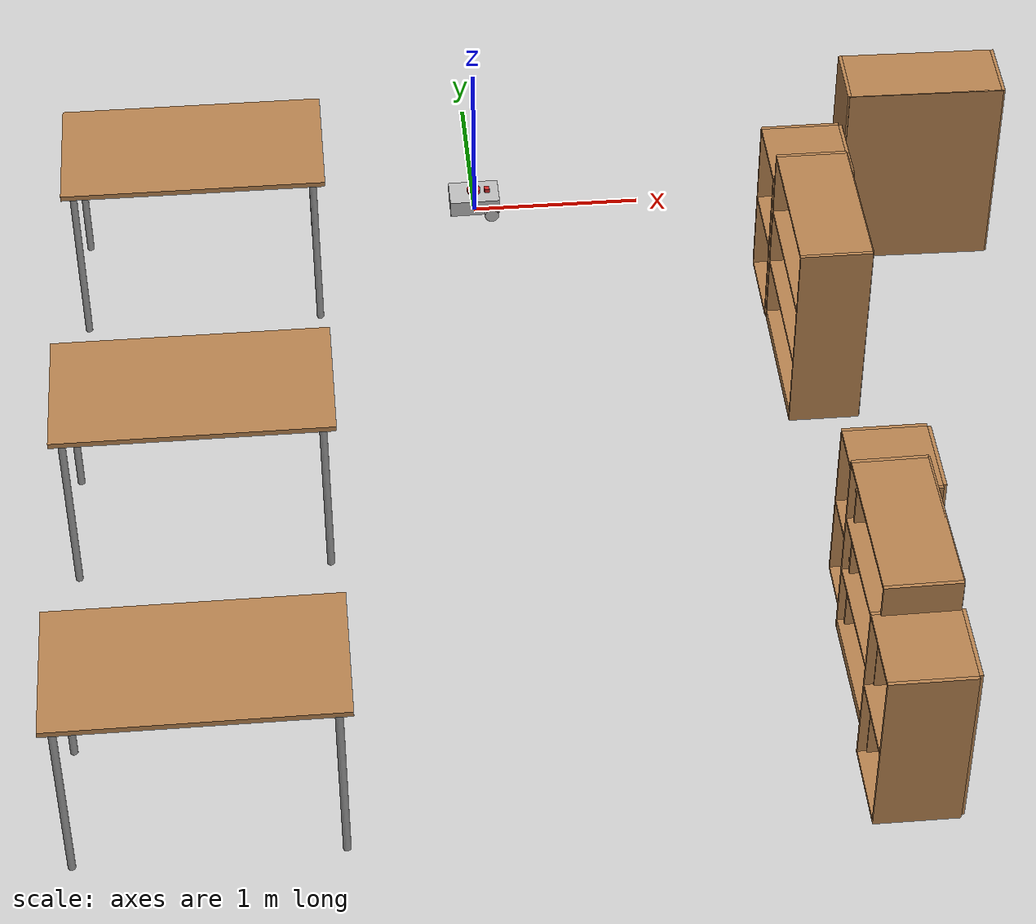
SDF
<sdf version="1.7">
 <world name="default">
  <model name="ground_plane">
   <static>1</static>
   <link name="link">
    <collision name="collision">
     <geometry><plane><normal>0 0 1</normal><size>100 100</size></plane></geometry>
     <surface><friction><ode><mu>100</mu><mu2>50</mu2></ode></friction></surface>
    </collision>
    <visual name="visual">
     <cast_shadows>0</cast_shadows>
     <geometry><plane><normal>0 0 1</normal><size>100 100</size></plane></geometry>
     <material>
      <script><uri>file://media/materials/scripts/gazebo.material</uri><name>Gazebo/Grey</name></script>
     </material>
    </visual>
   </link>
  </model>
  <model name="cabinet">
   <static>1</static>
   <link name="cabinet_bottom_plate">
    <inertial>
     <pose>0 0 -1 0 -0 0</pose>
     <inertia><ixx>2.05</ixx><ixy>0</ixy><ixz>0</ixz><iyy>2.05</iyy><iyz>0</iyz><izz>2.05</izz></inertia>
     <mass>25</mass>
    </inertial>
    <collision name="cabinet_bottom_plate_geom">
     <pose>0 0 0.01 0 -0 0</pose>
     <geometry><box><size>0.45 0.45 0.02</size></box></geometry>
    </collision>
    <visual name="cabinet_bottom_plate_geom_visual">
     <pose>0 0 0.01 0 -0 0</pose>
     <geometry><box><size>0.45 0.45 0.02</size></box></geometry>
     <material>
      <script><uri>file://media/materials/scripts/gazebo.material</uri><name>Gazebo/Wood</name></script>
     </material>
    </visual>
    <collision name="cabinet_bottom_plate_geom_cabinet_back_plate">
     <pose>0.235 0 0.51 0 -0 0</pose>
     <geometry><box><size>0.02 0.45 1.02</size></box></geometry>
    </collision>
    <visual name="cabinet_bottom_plate_geom_cabinet_back_plate_visual">
     <pose>0.235 0 0.51 0 -0 0</pose>
     <geometry><box><size>0.02 0.45 1.02</size></box></geometry>
     <material>
      <script><uri>file://media/materials/scripts/gazebo.material</uri><name>Gazebo/Wood</name></script>
     </material>
    </visual>
    <collision name="cabinet_bottom_plate_geom_cabinet_left_plate">
     <pose>0 0.235 0.51 0 -0 0</pose>
     <geometry><box><size>0.45 0.02 1.02</size></box></geometry>
    </collision>
    <visual name="cabinet_bottom_plate_geom_cabinet_left_plate_visual">
     <pose>0 0.235 0.51 0 -0 0</pose>
     <geometry><box><size>0.45 0.02 1.02</size></box></geometry>
     <material>
      <script><uri>file://media/materials/scripts/gazebo.material</uri><name>Gazebo/Wood</name></script>
     </material>
    </visual>
    <collision name="cabinet_bottom_plate_geom_cabinet_middle_plate">
     <pose>0 0 0.51 0 -0 0</pose>
     <geometry><box><size>0.45 0.45 0.02</size></box></geometry>
    </collision>
    <visual name="cabinet_bottom_plate_geom_cabinet_middle_plate_visual">
     <pose>0 0 0.51 0 -0 0</pose>
     <geometry><box><size>0.45 0.45 0.02</size></box></geometry>
     <material>
      <script><uri>file://media/materials/scripts/gazebo.material</uri><name>Gazebo/Wood</name></script>
     </material>
    </visual>
    <collision name="cabinet_bottom_plate_geom_cabinet_right_plate">
     <pose>0 -0.235 0.51 0 -0 0</pose>
     <geometry><box><size>0.45 0.02 1.02</size></box></geometry>
    </collision>
    <visual name="cabinet_bottom_plate_geom_cabinet_right_plate_visual">
     <pose>0 -0.235 0.51 0 -0 0</pose>
     <geometry><box><size>0.45 0.02 1.02</size></box></geometry>
     <material>
      <script><uri>file://media/materials/scripts/gazebo.material</uri><name>Gazebo/Wood</name></script>
     </material>
    </visual>
    <collision name="cabinet_bottom_plate_geom_cabinet_top_plate">
     <pose>0 0 1.01 0 -0 0</pose>
     <geometry><box><size>0.45 0.45 0.02</size></box></geometry>
    </collision>
    <visual name="cabinet_bottom_plate_geom_cabinet_top_plate_visual">
     <pose>0 0 1.01 0 -0 0</pose>
     <geometry><box><size>0.45 0.45 0.02</size></box></geometry>
     <material>
      <script><uri>file://media/materials/scripts/gazebo.material</uri><name>Gazebo/Wood</name></script>
     </material>
    </visual>
   </link>
   <pose>1.85545 -0.907747 0 0 -0 0</pose>
  </model>
  <model name="table">
   <static>1</static>
   <link name="link">
    <collision name="surface">
     <pose>0 0 1 0 -0 0</pose>
     <geometry><box><size>1.5 0.8 0.03</size></box></geometry>
     <surface><friction><ode><mu>0.6</mu><mu2>0.6</mu2></ode></friction></surface>
    </collision>
    <visual name="visual1">
     <pose>0 0 1 0 -0 0</pose>
     <geometry><box><size>1.5 0.8 0.03</size></box></geometry>
     <material>
      <script><uri>file://media/materials/scripts/gazebo.material</uri><name>Gazebo/Wood</name></script>
     </material>
    </visual>
    <collision name="front_left_leg">
     <pose>0.68 0.38 0.5 0 -0 0</pose>
     <geometry><cylinder><radius>0.02</radius><length>1</length></cylinder></geometry>
    </collision>
    <visual name="front_left_leg">
     <pose>0.68 0.38 0.5 0 -0 0</pose>
     <geometry><cylinder><radius>0.02</radius><length>1</length></cylinder></geometry>
     <material>
      <script><uri>file://media/materials/scripts/gazebo.material</uri><name>Gazebo/Grey</name></script>
     </material>
    </visual>
    <collision name="front_right_leg">
     <pose>0.68 -0.38 0.5 0 -0 0</pose>
     <geometry><cylinder><radius>0.02</radius><length>1</length></cylinder></geometry>
    </collision>
    <visual name="front_right_leg">
     <pose>0.68 -0.38 0.5 0 -0 0</pose>
     <geometry><cylinder><radius>0.02</radius><length>1</length></cylinder></geometry>
     <material>
      <script><uri>file://media/materials/scripts/gazebo.material</uri><name>Gazebo/Grey</name></script>
     </material>
    </visual>
    <collision name="back_right_leg">
     <pose>-0.68 -0.38 0.5 0 -0 0</pose>
     <geometry><cylinder><radius>0.02</radius><length>1</length></cylinder></geometry>
    </collision>
    <visual name="back_right_leg">
     <pose>-0.68 -0.38 0.5 0 -0 0</pose>
     <geometry><cylinder><radius>0.02</radius><length>1</length></cylinder></geometry>
     <material>
      <script><uri>file://media/materials/scripts/gazebo.material</uri><name>Gazebo/Grey</name></script>
     </material>
    </visual>
    <collision name="back_left_leg">
     <pose>-0.68 0.38 0.5 0 -0 0</pose>
     <geometry><cylinder><radius>0.02</radius><length>1</length></cylinder></geometry>
    </collision>
    <visual name="back_left_leg">
     <pose>-0.68 0.38 0.5 0 -0 0</pose>
     <geometry><cylinder><radius>0.02</radius><length>1</length></cylinder></geometry>
     <material>
      <script><uri>file://media/materials/scripts/gazebo.material</uri><name>Gazebo/Grey</name></script>
     </material>
    </visual>
   </link>
   <pose>-1.70541 -4.6233 0 0 -0 0</pose>
  </model>
  <model name="table_clone">
   <static>1</static>
   <link name="link">
    <collision name="surface">
     <pose>0 0 1 0 -0 0</pose>
     <geometry><box><size>1.5 0.8 0.03</size></box></geometry>
     <surface><friction><ode><mu>0.6</mu><mu2>0.6</mu2></ode></friction></surface>
    </collision>
    <visual name="visual1">
     <pose>0 0 1 0 -0 0</pose>
     <geometry><box><size>1.5 0.8 0.03</size></box></geometry>
     <material>
      <script><uri>file://media/materials/scripts/gazebo.material</uri><name>Gazebo/Wood</name></script>
     </material>
    </visual>
    <collision name="front_left_leg">
     <pose>0.68 0.38 0.5 0 -0 0</pose>
     <geometry><cylinder><radius>0.02</radius><length>1</length></cylinder></geometry>
    </collision>
    <visual name="front_left_leg">
     <pose>0.68 0.38 0.5 0 -0 0</pose>
     <geometry><cylinder><radius>0.02</radius><length>1</length></cylinder></geometry>
     <material>
      <script><uri>file://media/materials/scripts/gazebo.material</uri><name>Gazebo/Grey</name></script>
     </material>
    </visual>
    <collision name="front_right_leg">
     <pose>0.68 -0.38 0.5 0 -0 0</pose>
     <geometry><cylinder><radius>0.02</radius><length>1</length></cylinder></geometry>
    </collision>
    <visual name="front_right_leg">
     <pose>0.68 -0.38 0.5 0 -0 0</pose>
     <geometry><cylinder><radius>0.02</radius><length>1</length></cylinder></geometry>
     <material>
      <script><uri>file://media/materials/scripts/gazebo.material</uri><name>Gazebo/Grey</name></script>
     </material>
    </visual>
    <collision name="back_right_leg">
     <pose>-0.68 -0.38 0.5 0 -0 0</pose>
     <geometry><cylinder><radius>0.02</radius><length>1</length></cylinder></geometry>
    </collision>
    <visual name="back_right_leg">
     <pose>-0.68 -0.38 0.5 0 -0 0</pose>
     <geometry><cylinder><radius>0.02</radius><length>1</length></cylinder></geometry>
     <material>
      <script><uri>file://media/materials/scripts/gazebo.material</uri><name>Gazebo/Grey</name></script>
     </material>
    </visual>
    <collision name="back_left_leg">
     <pose>-0.68 0.38 0.5 0 -0 0</pose>
     <geometry><cylinder><radius>0.02</radius><length>1</length></cylinder></geometry>
    </collision>
    <visual name="back_left_leg">
     <pose>-0.68 0.38 0.5 0 -0 0</pose>
     <geometry><cylinder><radius>0.02</radius><length>1</length></cylinder></geometry>
     <material>
      <script><uri>file://media/materials/scripts/gazebo.material</uri><name>Gazebo/Grey</name></script>
     </material>
    </visual>
   </link>
   <pose>-1.69612 -2.61119 0 0 -0 0</pose>
  </model>
  <model name="table_clone_0">
   <static>1</static>
   <link name="link">
    <collision name="surface">
     <pose>0 0 1 0 -0 0</pose>
     <geometry><box><size>1.5 0.8 0.03</size></box></geometry>
     <surface><friction><ode><mu>0.6</mu><mu2>0.6</mu2></ode></friction></surface>
    </collision>
    <visual name="visual1">
     <pose>0 0 1 0 -0 0</pose>
     <geometry><box><size>1.5 0.8 0.03</size></box></geometry>
     <material>
      <script><uri>file://media/materials/scripts/gazebo.material</uri><name>Gazebo/Wood</name></script>
     </material>
    </visual>
    <collision name="front_left_leg">
     <pose>0.68 0.38 0.5 0 -0 0</pose>
     <geometry><cylinder><radius>0.02</radius><length>1</length></cylinder></geometry>
    </collision>
    <visual name="front_left_leg">
     <pose>0.68 0.38 0.5 0 -0 0</pose>
     <geometry><cylinder><radius>0.02</radius><length>1</length></cylinder></geometry>
     <material>
      <script><uri>file://media/materials/scripts/gazebo.material</uri><name>Gazebo/Grey</name></script>
     </material>
    </visual>
    <collision name="front_right_leg">
     <pose>0.68 -0.38 0.5 0 -0 0</pose>
     <geometry><cylinder><radius>0.02</radius><length>1</length></cylinder></geometry>
    </collision>
    <visual name="front_right_leg">
     <pose>0.68 -0.38 0.5 0 -0 0</pose>
     <geometry><cylinder><radius>0.02</radius><length>1</length></cylinder></geometry>
     <material>
      <script><uri>file://media/materials/scripts/gazebo.material</uri><name>Gazebo/Grey</name></script>
     </material>
    </visual>
    <collision name="back_right_leg">
     <pose>-0.68 -0.38 0.5 0 -0 0</pose>
     <geometry><cylinder><radius>0.02</radius><length>1</length></cylinder></geometry>
    </collision>
    <visual name="back_right_leg">
     <pose>-0.68 -0.38 0.5 0 -0 0</pose>
     <geometry><cylinder><radius>0.02</radius><length>1</length></cylinder></geometry>
     <material>
      <script><uri>file://media/materials/scripts/gazebo.material</uri><name>Gazebo/Grey</name></script>
     </material>
    </visual>
    <collision name="back_left_leg">
     <pose>-0.68 0.38 0.5 0 -0 0</pose>
     <geometry><cylinder><radius>0.02</radius><length>1</length></cylinder></geometry>
    </collision>
    <visual name="back_left_leg">
     <pose>-0.68 0.38 0.5 0 -0 0</pose>
     <geometry><cylinder><radius>0.02</radius><length>1</length></cylinder></geometry>
     <material>
      <script><uri>file://media/materials/scripts/gazebo.material</uri><name>Gazebo/Grey</name></script>
     </material>
    </visual>
   </link>
   <pose>-1.66786 -0.543977 0 0 -0 0</pose>
  </model>
  <model name="bookshelf_clone_0">
   <static>1</static>
   <link name="link">
    <inertial><mass>1</mass></inertial>
    <collision name="back">
     <pose>0 0.005 0.6 0 -0 0</pose>
     <geometry><box><size>0.9 0.01 1.2</size></box></geometry>
    </collision>
    <visual name="visual1">
     <pose>0 0.005 0.6 0 -0 0</pose>
     <geometry><box><size>0.9 0.01 1.2</size></box></geometry>
     <material>
      <script><uri>file://media/materials/scripts/gazebo.material</uri><name>Gazebo/Wood</name></script>
     </material>
    </visual>
    <collision name="left_side">
     <pose>0.45 -0.195 0.6 0 -0 0</pose>
     <geometry><box><size>0.02 0.4 1.2</size></box></geometry>
    </collision>
    <visual name="visual2">
     <pose>0.45 -0.195 0.6 0 -0 0</pose>
     <geometry><box><size>0.02 0.4 1.2</size></box></geometry>
     <material>
      <script><uri>file://media/materials/scripts/gazebo.material</uri><name>Gazebo/Wood</name></script>
     </material>
    </visual>
    <collision name="right_side">
     <pose>-0.45 -0.195 0.6 0 -0 0</pose>
     <geometry><box><size>0.02 0.4 1.2</size></box></geometry>
    </collision>
    <visual name="visual3">
     <pose>-0.45 -0.195 0.6 0 -0 0</pose>
     <geometry><box><size>0.02 0.4 1.2</size></box></geometry>
     <material>
      <script><uri>file://media/materials/scripts/gazebo.material</uri><name>Gazebo/Wood</name></script>
     </material>
    </visual>
    <collision name="bottom">
     <pose>0 -0.195 0.03 0 -0 0</pose>
     <geometry><box><size>0.88 0.4 0.06</size></box></geometry>
    </collision>
    <visual name="visual4">
     <pose>0 -0.195 0.03 0 -0 0</pose>
     <geometry><box><size>0.88 0.4 0.06</size></box></geometry>
     <material>
      <script><uri>file://media/materials/scripts/gazebo.material</uri><name>Gazebo/Wood</name></script>
     </material>
    </visual>
    <collision name="top">
     <pose>0 -0.195 1.19 0 -0 0</pose>
     <geometry><box><size>0.88 0.4 0.02</size></box></geometry>
    </collision>
    <visual name="visual5">
     <pose>0 -0.195 1.19 0 -0 0</pose>
     <geometry><box><size>0.88 0.4 0.02</size></box></geometry>
     <material>
      <script><uri>file://media/materials/scripts/gazebo.material</uri><name>Gazebo/Wood</name></script>
     </material>
    </visual>
    <collision name="low_shelf">
     <pose>0 -0.195 0.43 0 -0 0</pose>
     <geometry><box><size>0.88 0.4 0.02</size></box></geometry>
    </collision>
    <visual name="visual6">
     <pose>0 -0.195 0.43 0 -0 0</pose>
     <geometry><box><size>0.88 0.4 0.02</size></box></geometry>
     <material>
      <script><uri>file://media/materials/scripts/gazebo.material</uri><name>Gazebo/Wood</name></script>
     </material>
    </visual>
    <collision name="high_shelf">
     <pose>0 -0.195 0.8 0 -0 0</pose>
     <geometry><box><size>0.88 0.4 0.02</size></box></geometry>
    </collision>
    <visual name="visual7">
     <pose>0 -0.195 0.8 0 -0 0</pose>
     <geometry><box><size>0.88 0.4 0.02</size></box></geometry>
     <material>
      <script><uri>file://media/materials/scripts/gazebo.material</uri><name>Gazebo/Wood</name></script>
     </material>
    </visual>
   </link>
   <pose>2.02975 -1.62271 0 0 0 -1.57187</pose>
  </model>
  <model name="bookshelf_clone_1">
   <static>1</static>
   <link name="link">
    <inertial><mass>1</mass></inertial>
    <collision name="back">
     <pose>0 0.005 0.6 0 -0 0</pose>
     <geometry><box><size>0.9 0.01 1.2</size></box></geometry>
    </collision>
    <visual name="visual1">
     <pose>0 0.005 0.6 0 -0 0</pose>
     <geometry><box><size>0.9 0.01 1.2</size></box></geometry>
     <material>
      <script><uri>file://media/materials/scripts/gazebo.material</uri><name>Gazebo/Wood</name></script>
     </material>
    </visual>
    <collision name="left_side">
     <pose>0.45 -0.195 0.6 0 -0 0</pose>
     <geometry><box><size>0.02 0.4 1.2</size></box></geometry>
    </collision>
    <visual name="visual2">
     <pose>0.45 -0.195 0.6 0 -0 0</pose>
     <geometry><box><size>0.02 0.4 1.2</size></box></geometry>
     <material>
      <script><uri>file://media/materials/scripts/gazebo.material</uri><name>Gazebo/Wood</name></script>
     </material>
    </visual>
    <collision name="right_side">
     <pose>-0.45 -0.195 0.6 0 -0 0</pose>
     <geometry><box><size>0.02 0.4 1.2</size></box></geometry>
    </collision>
    <visual name="visual3">
     <pose>-0.45 -0.195 0.6 0 -0 0</pose>
     <geometry><box><size>0.02 0.4 1.2</size></box></geometry>
     <material>
      <script><uri>file://media/materials/scripts/gazebo.material</uri><name>Gazebo/Wood</name></script>
     </material>
    </visual>
    <collision name="bottom">
     <pose>0 -0.195 0.03 0 -0 0</pose>
     <geometry><box><size>0.88 0.4 0.06</size></box></geometry>
    </collision>
    <visual name="visual4">
     <pose>0 -0.195 0.03 0 -0 0</pose>
     <geometry><box><size>0.88 0.4 0.06</size></box></geometry>
     <material>
      <script><uri>file://media/materials/scripts/gazebo.material</uri><name>Gazebo/Wood</name></script>
     </material>
    </visual>
    <collision name="top">
     <pose>0 -0.195 1.19 0 -0 0</pose>
     <geometry><box><size>0.88 0.4 0.02</size></box></geometry>
    </collision>
    <visual name="visual5">
     <pose>0 -0.195 1.19 0 -0 0</pose>
     <geometry><box><size>0.88 0.4 0.02</size></box></geometry>
     <material>
      <script><uri>file://media/materials/scripts/gazebo.material</uri><name>Gazebo/Wood</name></script>
     </material>
    </visual>
    <collision name="low_shelf">
     <pose>0 -0.195 0.43 0 -0 0</pose>
     <geometry><box><size>0.88 0.4 0.02</size></box></geometry>
    </collision>
    <visual name="visual6">
     <pose>0 -0.195 0.43 0 -0 0</pose>
     <geometry><box><size>0.88 0.4 0.02</size></box></geometry>
     <material>
      <script><uri>file://media/materials/scripts/gazebo.material</uri><name>Gazebo/Wood</name></script>
     </material>
    </visual>
    <collision name="high_shelf">
     <pose>0 -0.195 0.8 0 -0 0</pose>
     <geometry><box><size>0.88 0.4 0.02</size></box></geometry>
    </collision>
    <visual name="visual7">
     <pose>0 -0.195 0.8 0 -0 0</pose>
     <geometry><box><size>0.88 0.4 0.02</size></box></geometry>
     <material>
      <script><uri>file://media/materials/scripts/gazebo.material</uri><name>Gazebo/Wood</name></script>
     </material>
    </visual>
   </link>
   <pose>2.03819 -4.1583 0 0 0 -1.5604</pose>
  </model>
  <model name="cabinet_clone_0">
   <static>1</static>
   <link name="cabinet_bottom_plate">
    <inertial>
     <pose>0 0 -1 0 -0 0</pose>
     <inertia><ixx>2.05</ixx><ixy>0</ixy><ixz>0</ixz><iyy>2.05</iyy><iyz>0</iyz><izz>2.05</izz></inertia>
     <mass>25</mass>
    </inertial>
    <collision name="cabinet_bottom_plate_geom">
     <pose>0 0 0.01 0 -0 0</pose>
     <geometry><box><size>0.45 0.45 0.02</size></box></geometry>
    </collision>
    <visual name="cabinet_bottom_plate_geom_visual">
     <pose>0 0 0.01 0 -0 0</pose>
     <geometry><box><size>0.45 0.45 0.02</size></box></geometry>
     <material>
      <script><uri>file://media/materials/scripts/gazebo.material</uri><name>Gazebo/Wood</name></script>
     </material>
    </visual>
    <collision name="cabinet_bottom_plate_geom_cabinet_back_plate">
     <pose>0.235 0 0.51 0 -0 0</pose>
     <geometry><box><size>0.02 0.45 1.02</size></box></geometry>
    </collision>
    <visual name="cabinet_bottom_plate_geom_cabinet_back_plate_visual">
     <pose>0.235 0 0.51 0 -0 0</pose>
     <geometry><box><size>0.02 0.45 1.02</size></box></geometry>
     <material>
      <script><uri>file://media/materials/scripts/gazebo.material</uri><name>Gazebo/Wood</name></script>
     </material>
    </visual>
    <collision name="cabinet_bottom_plate_geom_cabinet_left_plate">
     <pose>0 0.235 0.51 0 -0 0</pose>
     <geometry><box><size>0.45 0.02 1.02</size></box></geometry>
    </collision>
    <visual name="cabinet_bottom_plate_geom_cabinet_left_plate_visual">
     <pose>0 0.235 0.51 0 -0 0</pose>
     <geometry><box><size>0.45 0.02 1.02</size></box></geometry>
     <material>
      <script><uri>file://media/materials/scripts/gazebo.material</uri><name>Gazebo/Wood</name></script>
     </material>
    </visual>
    <collision name="cabinet_bottom_plate_geom_cabinet_middle_plate">
     <pose>0 0 0.51 0 -0 0</pose>
     <geometry><box><size>0.45 0.45 0.02</size></box></geometry>
    </collision>
    <visual name="cabinet_bottom_plate_geom_cabinet_middle_plate_visual">
     <pose>0 0 0.51 0 -0 0</pose>
     <geometry><box><size>0.45 0.45 0.02</size></box></geometry>
     <material>
      <script><uri>file://media/materials/scripts/gazebo.material</uri><name>Gazebo/Wood</name></script>
     </material>
    </visual>
    <collision name="cabinet_bottom_plate_geom_cabinet_right_plate">
     <pose>0 -0.235 0.51 0 -0 0</pose>
     <geometry><box><size>0.45 0.02 1.02</size></box></geometry>
    </collision>
    <visual name="cabinet_bottom_plate_geom_cabinet_right_plate_visual">
     <pose>0 -0.235 0.51 0 -0 0</pose>
     <geometry><box><size>0.45 0.02 1.02</size></box></geometry>
     <material>
      <script><uri>file://media/materials/scripts/gazebo.material</uri><name>Gazebo/Wood</name></script>
     </material>
    </visual>
    <collision name="cabinet_bottom_plate_geom_cabinet_top_plate">
     <pose>0 0 1.01 0 -0 0</pose>
     <geometry><box><size>0.45 0.45 0.02</size></box></geometry>
    </collision>
    <visual name="cabinet_bottom_plate_geom_cabinet_top_plate_visual">
     <pose>0 0 1.01 0 -0 0</pose>
     <geometry><box><size>0.45 0.45 0.02</size></box></geometry>
     <material>
      <script><uri>file://media/materials/scripts/gazebo.material</uri><name>Gazebo/Wood</name></script>
     </material>
    </visual>
   </link>
   <pose>1.82584 -4.83643 -0.008072 0 -0 0</pose>
  </model>
  <model name="cabinet_clone_3">
   <static>1</static>
   <link name="cabinet_bottom_plate">
    <inertial>
     <pose>0 0 -1 0 -0 0</pose>
     <inertia><ixx>2.05</ixx><ixy>0</ixy><ixz>0</ixz><iyy>2.05</iyy><iyz>0</iyz><izz>2.05</izz></inertia>
     <mass>25</mass>
    </inertial>
    <collision name="cabinet_bottom_plate_geom">
     <pose>0 0 0.01 0 -0 0</pose>
     <geometry><box><size>0.45 0.45 0.02</size></box></geometry>
    </collision>
    <visual name="cabinet_bottom_plate_geom_visual">
     <pose>0 0 0.01 0 -0 0</pose>
     <geometry><box><size>0.45 0.45 0.02</size></box></geometry>
     <material>
      <script><uri>file://media/materials/scripts/gazebo.material</uri><name>Gazebo/Wood</name></script>
     </material>
    </visual>
    <collision name="cabinet_bottom_plate_geom_cabinet_back_plate">
     <pose>0.235 0 0.51 0 -0 0</pose>
     <geometry><box><size>0.02 0.45 1.02</size></box></geometry>
    </collision>
    <visual name="cabinet_bottom_plate_geom_cabinet_back_plate_visual">
     <pose>0.235 0 0.51 0 -0 0</pose>
     <geometry><box><size>0.02 0.45 1.02</size></box></geometry>
     <material>
      <script><uri>file://media/materials/scripts/gazebo.material</uri><name>Gazebo/Wood</name></script>
     </material>
    </visual>
    <collision name="cabinet_bottom_plate_geom_cabinet_left_plate">
     <pose>0 0.235 0.51 0 -0 0</pose>
     <geometry><box><size>0.45 0.02 1.02</size></box></geometry>
    </collision>
    <visual name="cabinet_bottom_plate_geom_cabinet_left_plate_visual">
     <pose>0 0.235 0.51 0 -0 0</pose>
     <geometry><box><size>0.45 0.02 1.02</size></box></geometry>
     <material>
      <script><uri>file://media/materials/scripts/gazebo.material</uri><name>Gazebo/Wood</name></script>
     </material>
    </visual>
    <collision name="cabinet_bottom_plate_geom_cabinet_middle_plate">
     <pose>0 0 0.51 0 -0 0</pose>
     <geometry><box><size>0.45 0.45 0.02</size></box></geometry>
    </collision>
    <visual name="cabinet_bottom_plate_geom_cabinet_middle_plate_visual">
     <pose>0 0 0.51 0 -0 0</pose>
     <geometry><box><size>0.45 0.45 0.02</size></box></geometry>
     <material>
      <script><uri>file://media/materials/scripts/gazebo.material</uri><name>Gazebo/Wood</name></script>
     </material>
    </visual>
    <collision name="cabinet_bottom_plate_geom_cabinet_right_plate">
     <pose>0 -0.235 0.51 0 -0 0</pose>
     <geometry><box><size>0.45 0.02 1.02</size></box></geometry>
    </collision>
    <visual name="cabinet_bottom_plate_geom_cabinet_right_plate_visual">
     <pose>0 -0.235 0.51 0 -0 0</pose>
     <geometry><box><size>0.45 0.02 1.02</size></box></geometry>
     <material>
      <script><uri>file://media/materials/scripts/gazebo.material</uri><name>Gazebo/Wood</name></script>
     </material>
    </visual>
    <collision name="cabinet_bottom_plate_geom_cabinet_top_plate">
     <pose>0 0 1.01 0 -0 0</pose>
     <geometry><box><size>0.45 0.45 0.02</size></box></geometry>
    </collision>
    <visual name="cabinet_bottom_plate_geom_cabinet_top_plate_visual">
     <pose>0 0 1.01 0 -0 0</pose>
     <geometry><box><size>0.45 0.45 0.02</size></box></geometry>
     <material>
      <script><uri>file://media/materials/scripts/gazebo.material</uri><name>Gazebo/Wood</name></script>
     </material>
    </visual>
   </link>
   <pose>1.89746 -3.51539 0 0 -0 0</pose>
  </model>
  <model name="bookshelf_clone_clone">
   <static>1</static>
   <link name="link">
    <inertial><mass>1</mass></inertial>
    <collision name="back">
     <pose>0 0.005 0.6 0 -0 0</pose>
     <geometry><box><size>0.9 0.01 1.2</size></box></geometry>
    </collision>
    <visual name="visual1">
     <pose>0 0.005 0.6 0 -0 0</pose>
     <geometry><box><size>0.9 0.01 1.2</size></box></geometry>
     <material>
      <script><uri>file://media/materials/scripts/gazebo.material</uri><name>Gazebo/Wood</name></script>
     </material>
    </visual>
    <collision name="left_side">
     <pose>0.45 -0.195 0.6 0 -0 0</pose>
     <geometry><box><size>0.02 0.4 1.2</size></box></geometry>
    </collision>
    <visual name="visual2">
     <pose>0.45 -0.195 0.6 0 -0 0</pose>
     <geometry><box><size>0.02 0.4 1.2</size></box></geometry>
     <material>
      <script><uri>file://media/materials/scripts/gazebo.material</uri><name>Gazebo/Wood</name></script>
     </material>
    </visual>
    <collision name="right_side">
     <pose>-0.45 -0.195 0.6 0 -0 0</pose>
     <geometry><box><size>0.02 0.4 1.2</size></box></geometry>
    </collision>
    <visual name="visual3">
     <pose>-0.45 -0.195 0.6 0 -0 0</pose>
     <geometry><box><size>0.02 0.4 1.2</size></box></geometry>
     <material>
      <script><uri>file://media/materials/scripts/gazebo.material</uri><name>Gazebo/Wood</name></script>
     </material>
    </visual>
    <collision name="bottom">
     <pose>0 -0.195 0.03 0 -0 0</pose>
     <geometry><box><size>0.88 0.4 0.06</size></box></geometry>
    </collision>
    <visual name="visual4">
     <pose>0 -0.195 0.03 0 -0 0</pose>
     <geometry><box><size>0.88 0.4 0.06</size></box></geometry>
     <material>
      <script><uri>file://media/materials/scripts/gazebo.material</uri><name>Gazebo/Wood</name></script>
     </material>
    </visual>
    <collision name="top">
     <pose>0 -0.195 1.19 0 -0 0</pose>
     <geometry><box><size>0.88 0.4 0.02</size></box></geometry>
    </collision>
    <visual name="visual5">
     <pose>0 -0.195 1.19 0 -0 0</pose>
     <geometry><box><size>0.88 0.4 0.02</size></box></geometry>
     <material>
      <script><uri>file://media/materials/scripts/gazebo.material</uri><name>Gazebo/Wood</name></script>
     </material>
    </visual>
    <collision name="low_shelf">
     <pose>0 -0.195 0.43 0 -0 0</pose>
     <geometry><box><size>0.88 0.4 0.02</size></box></geometry>
    </collision>
    <visual name="visual6">
     <pose>0 -0.195 0.43 0 -0 0</pose>
     <geometry><box><size>0.88 0.4 0.02</size></box></geometry>
     <material>
      <script><uri>file://media/materials/scripts/gazebo.material</uri><name>Gazebo/Wood</name></script>
     </material>
    </visual>
    <collision name="high_shelf">
     <pose>0 -0.195 0.8 0 -0 0</pose>
     <geometry><box><size>0.88 0.4 0.02</size></box></geometry>
    </collision>
    <visual name="visual7">
     <pose>0 -0.195 0.8 0 -0 0</pose>
     <geometry><box><size>0.88 0.4 0.02</size></box></geometry>
     <material>
      <script><uri>file://media/materials/scripts/gazebo.material</uri><name>Gazebo/Wood</name></script>
     </material>
    </visual>
   </link>
   <pose>2.5915 -0.659893 0 0 -0 3.12243</pose>
  </model>
  <model name="simple_robot_car">
   <link name="base_link">
    <inertial>
     <pose>0 0 0.088525 0 -0 0</pose>
     <mass>3.05</mass>
     <inertia>
      <ixx>0.0304984</ixx>
      <ixy>0</ixy>
      <ixz>0</ixz>
      <iyy>0.0304984</iyy>
      <iyz>0</iyz>
      <izz>0.0301</izz>
     </inertia>
    </inertial>
    <collision name="base_link_collision">
     <pose>0 0 0.09 0 -0 0</pose>
     <geometry><box><size>0.3 0.2 0.1</size></box></geometry>
    </collision>
    <collision name="base_link_fixed_joint_lump__center_spherical_wheel_collision_1">
     <pose>-0.1 0 0.0425 0 -0 0</pose>
     <geometry><sphere><radius>0.04</radius></sphere></geometry>
     <surface><friction><ode><mu>0.001</mu><mu2>0.001</mu2></ode></friction></surface>
    </collision>
    <collision name="base_link_fixed_joint_lump__camera_link_collision_2">
     <pose>0.08 0 0.15 1.5708 -0 0</pose>
     <geometry><box><size>0.03 0.03 0.03</size></box></geometry>
    </collision>
    <collision name="base_link_fixed_joint_lump__laser_frame_collision_3">
     <pose>0 0 0.15 0 -0 0</pose>
     <geometry><cylinder><length>0.03</length><radius>0.04</radius></cylinder></geometry>
    </collision>
    <visual name="base_link_visual">
     <pose>0 0 0.09 0 -0 0</pose>
     <geometry><box><size>0.3 0.2 0.1</size></box></geometry>
    </visual>
    <visual name="base_link_fixed_joint_lump__center_spherical_wheel_visual_1">
     <pose>-0.1 0 0.0425 0 -0 0</pose>
     <geometry><sphere><radius>0.04</radius></sphere></geometry>
     <material>
      <script><name>Gazebo/Black</name><uri>file://media/materials/scripts/gazebo.material</uri></script>
     </material>
    </visual>
    <visual name="base_link_fixed_joint_lump__camera_link_visual_2">
     <pose>0.08 0 0.15 0 -0 0</pose>
     <geometry><box><size>0.03 0.03 0.03</size></box></geometry>
     <material>
      <script><name>Gazebo/Red</name><uri>file://media/materials/scripts/gazebo.material</uri></script>
     </material>
    </visual>
    <visual name="base_link_fixed_joint_lump__laser_frame_visual_3">
     <pose>0 0 0.15 0 -0 0</pose>
     <geometry><cylinder><length>0.03</length><radius>0.04</radius></cylinder></geometry>
     <material>
      <script><name>Gazebo/Red</name><uri>file://media/materials/scripts/gazebo.material</uri></script>
     </material>
    </visual>
    <sensor name="camera" type="camera">
     <visualize>1</visualize>
     <update_rate>10</update_rate>
     <camera>
      <horizontal_fov>1.089</horizontal_fov>
      <image><format>R8G8B8</format><width>640</width><height>480</height></image>
      <clip><near>0.05</near><far>8</far></clip>
     </camera>
     <plugin name="camera_controller" filename="libgazebo_ros_camera.so">
      <frame_name>camera_link_optical</frame_name>
     </plugin>
     <pose>0.08 0 0.15 0 -0 0</pose>
    </sensor>
    <sensor name="laser" type="ray">
     <visualize>1</visualize>
     <update_rate>10</update_rate>
     <ray>
      <scan>
       <horizontal>
        <samples>360</samples>
        <min_angle>-3.14</min_angle>
        <max_angle>3.14</max_angle>
        <resolution>1</resolution>
       </horizontal>
       <vertical><samples>1</samples><min_angle>0</min_angle><max_angle>0</max_angle></vertical>
      </scan>
      <range><min>0.2</min><max>12</max></range>
     </ray>
     <plugin name="laser_controller" filename="libgazebo_ros_ray_sensor.so">
      <ros><remapping>~/out:=/scan</remapping></ros>
      <output_type>sensor_msgs/LaserScan</output_type>
      <frame_name>laser_frame</frame_name>
     </plugin>
     <pose>0 0 0.15 0 -0 0</pose>
    </sensor>
   </link>
   <joint name="body_left_wheel" type="revolute">
    <pose relative_to="base_link">0.1 -0.11 0.0425 0 -0 0</pose>
    <parent>base_link</parent>
    <child>left_wheel</child>
    <axis>
     <xyz>0 1 0</xyz>
     <limit><lower>-1e+16</lower><upper>1e+16</upper></limit>
     <dynamics><spring_reference>0</spring_reference><spring_stiffness>0</spring_stiffness></dynamics>
    </axis>
   </joint>
   <link name="left_wheel">
    <pose relative_to="body_left_wheel">0 0 0 0 -0 0</pose>
    <inertial>
     <mass>0.3</mass>
     <inertia><ixx>0.0005</ixx><ixy>0</ixy><ixz>0</ixz><iyy>0.0005</iyy><iyz>0</iyz><izz>0.0005</izz></inertia>
    </inertial>
    <collision name="left_wheel_collision">
     <pose>0 0 0 1.5708 -0 0</pose>
     <geometry><cylinder><length>0.03</length><radius>0.0425</radius></cylinder></geometry>
    </collision>
    <visual name="left_wheel_visual">
     <pose>0 0 0 1.5708 -0 0</pose>
     <geometry><cylinder><length>0.03</length><radius>0.0425</radius></cylinder></geometry>
    </visual>
   </link>
   <joint name="body_right_wheel" type="revolute">
    <pose relative_to="base_link">0.1 0.11 0.0425 0 -0 0</pose>
    <parent>base_link</parent>
    <child>right_wheel</child>
    <axis>
     <xyz>0 1 0</xyz>
     <limit><lower>-1e+16</lower><upper>1e+16</upper></limit>
     <dynamics><spring_reference>0</spring_reference><spring_stiffness>0</spring_stiffness></dynamics>
    </axis>
   </joint>
   <link name="right_wheel">
    <pose relative_to="body_right_wheel">0 0 0 0 -0 0</pose>
    <inertial>
     <mass>0.3</mass>
     <inertia><ixx>0.0005</ixx><ixy>0</ixy><ixz>0</ixz><iyy>0.0005</iyy><iyz>0</iyz><izz>0.0005</izz></inertia>
    </inertial>
    <collision name="right_wheel_collision">
     <pose>0 0 0 1.5708 -0 0</pose>
     <geometry><cylinder><length>0.03</length><radius>0.0425</radius></cylinder></geometry>
    </collision>
    <visual name="right_wheel_visual">
     <pose>0 0 0 1.5708 -0 0</pose>
     <geometry><cylinder><length>0.03</length><radius>0.0425</radius></cylinder></geometry>
    </visual>
   </link>
   <static>0</static>
   <plugin name="gazebo_diff_drive" filename="libgazebo_ros_diff_drive.so">
    <ros><namespace>/</namespace><remapping>cmd_vel:=/cmd_vel</remapping></ros>
    <left_joint>body_right_wheel</left_joint>
    <right_joint>body_left_wheel</right_joint>
    <wheel_separation>0.22</wheel_separation>
    <wheel_diameter>0.08</wheel_diameter>
    <max_wheel_torque>5.0</max_wheel_torque>
    <max_wheel_acceleration>10.0</max_wheel_acceleration>
    <odometry_frame>odom</odometry_frame>
    <robot_base_frame>base_link</robot_base_frame>
    <publish_odometry>1</publish_odometry>
    <publish_wheel_tf>1</publish_wheel_tf>
    <publish_odom_tf>1</publish_odom_tf>
   </plugin>
   <pose>-0.003374 -0.000168 -0.001249 0 -0.01252 -0.000478</pose>
  </model>
 </world>
</sdf>
